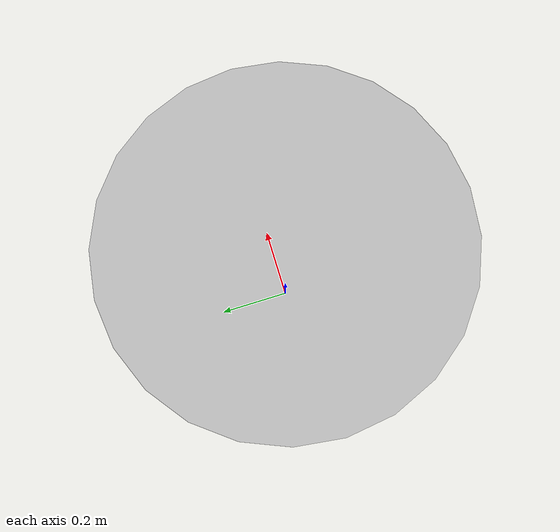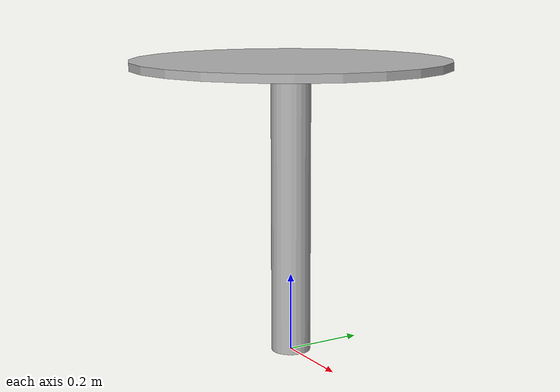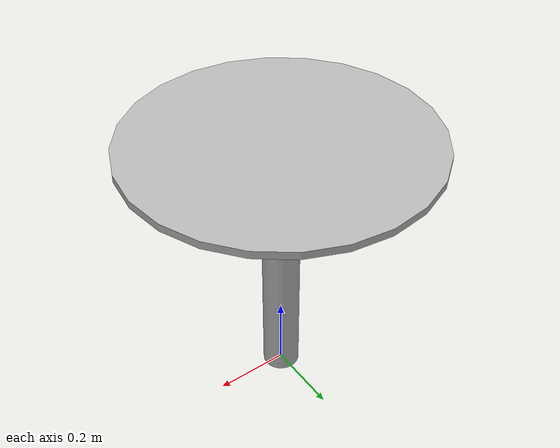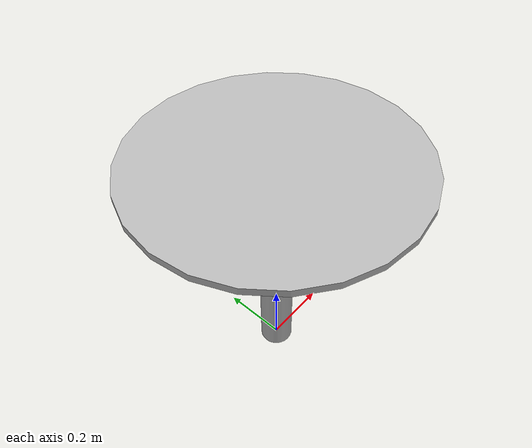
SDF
<?xml version="1.0" ?>
<sdf version="1.6">
  <model name="rwc2023/round_table">
    <static>true</static>
    <link name="1_link">
      <collision name="1_col">
        <geometry>
            <cylinder>
                <radius>0.4</radius>
                <length>0.02</length>
            </cylinder>
        </geometry>
      </collision>
      <visual name="1_vis">
        <geometry>
            <cylinder>
                <radius>0.4</radius>
                <length>0.02</length>
            </cylinder>
        </geometry>
      </visual>
      <pose>0.0 0.0 0.74 0 0 0</pose>
    </link>
    <link name="2_link">
      <collision name="2_col">
        <geometry>
            <cylinder>
                <radius>0.05</radius>
                <length>0.72</length>
            </cylinder>
        </geometry>
      </collision>
      <visual name="2_vis">
        <geometry>
            <cylinder>
                <radius>0.05</radius>
                <length>0.72</length>
            </cylinder>
        </geometry>
      </visual>
      <pose>0.0 0.0 0.36 0 0 0</pose>
    </link>
    <link name="on_top_of">
      <virtual_volume name="on_top_of_vv">
        <geometry>
            <cylinder>
                <radius>0.4</radius>
                <length>0.15</length>
            </cylinder>
        </geometry>
        <pose>0.0 0.0 0.83 0 0 0</pose>
      </virtual_volume>
    </link>
    <link name="in_front_of">
      <virtual_volume name="in_front_of_vv">
        <geometry>
          <box>
            <size>0.1 0.1 0.01</size>
          </box>
        </geometry>
        <pose>0.95 0.0 0.005 0 0 0</pose>
      </virtual_volume>
    </link>
  </model>
</sdf>
